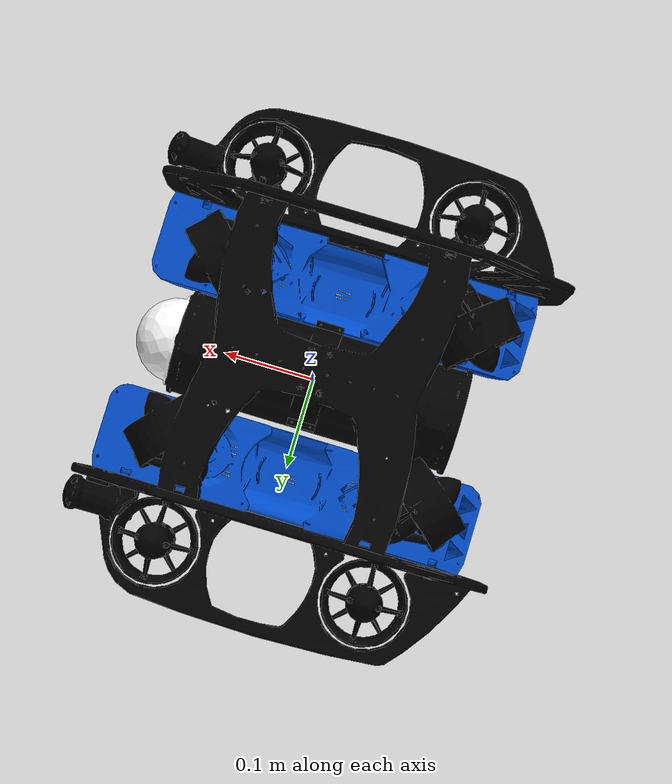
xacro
<?xml version="1.0" encoding="utf-8"?>
<robot name="bluerov2" xmlns:xacro="http://ros.org/wiki/xacro">

    <xacro:include filename="materials.xacro" />

    <link name="bluerov2_base">
      <visual>
        <origin
          xyz="0 0 0"
          rpy="0 0 0" />
        <geometry>
          <mesh
            filename="package://bluerov2_sim/data/bluerov2/stl/simple_hydro/bluerov2_base.stl" scale="1.0 1.0 1.0"/>
        </geometry>
        <material name="black"/>
      </visual>
    </link>

    <link name="camera_dome">
      <visual>
        <origin
          xyz="0 0 0"
          rpy="0 0 0" />
        <geometry>
          <mesh
            filename="package://bluerov2_sim/data/bluerov2/stl/dome.stl" scale="1.0 1.0 1.0"/>
        </geometry>
        <material name="glass"/>
      </visual>
    </link>

    <link name="foams">
      <visual>
        <origin
          xyz="0 0 0"
          rpy="0 0 0" />
        <geometry>
          <mesh
            filename="package://bluerov2_sim/data/bluerov2/stl/simple_hydro/foams.stl" scale="1.0 1.0 1.0"/>
        </geometry>
        <material name="blue"/>
      </visual>
    </link>

    <joint name="base_foams" type="fixed">
      <origin rpy="0 0 0" xyz="0 0 0"/>
      <parent link="bluerov2_base" />
      <child link="foams" />
    </joint>

    <joint name="base_sideR" type="fixed">
      <origin rpy="0 0 0" xyz="0 0 0"/>
      <parent link="bluerov2_base" />
      <child link="camera_dome" />
    </joint>

</robot>

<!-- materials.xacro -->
<robot xmlns:xacro="http://ros.org/wiki/xacro">
    <material name="blue">
        <color rgba="0 0.3 0.8 1"/>
    </material>

    <material name="black">
        <color rgba="0 0 0 1"/>
    </material>

    <material name="blue_propeller">
        <color rgba="0 0.1 0.85 1"/>
    </material>

    <material name="glass">
        <color rgba="1.0 1.0 1.0 1"/>
    </material>
</robot>
